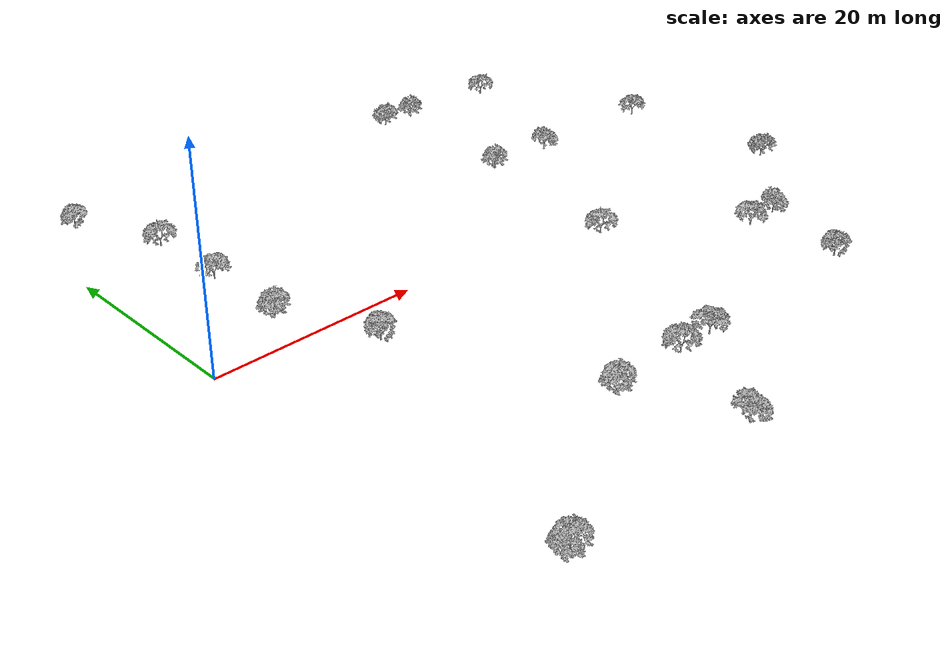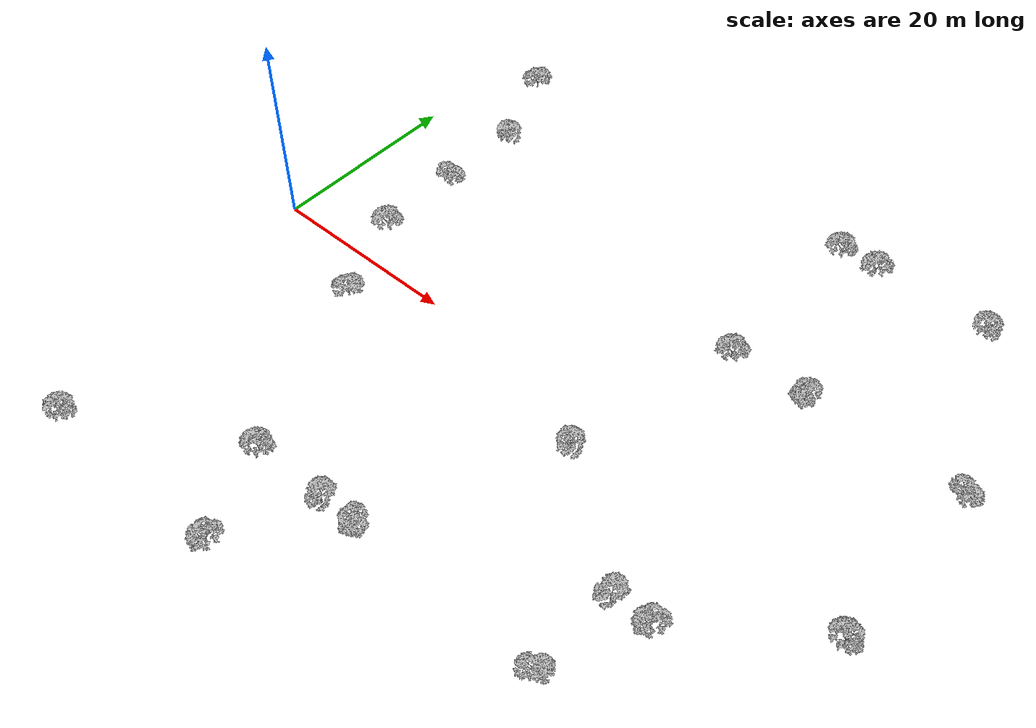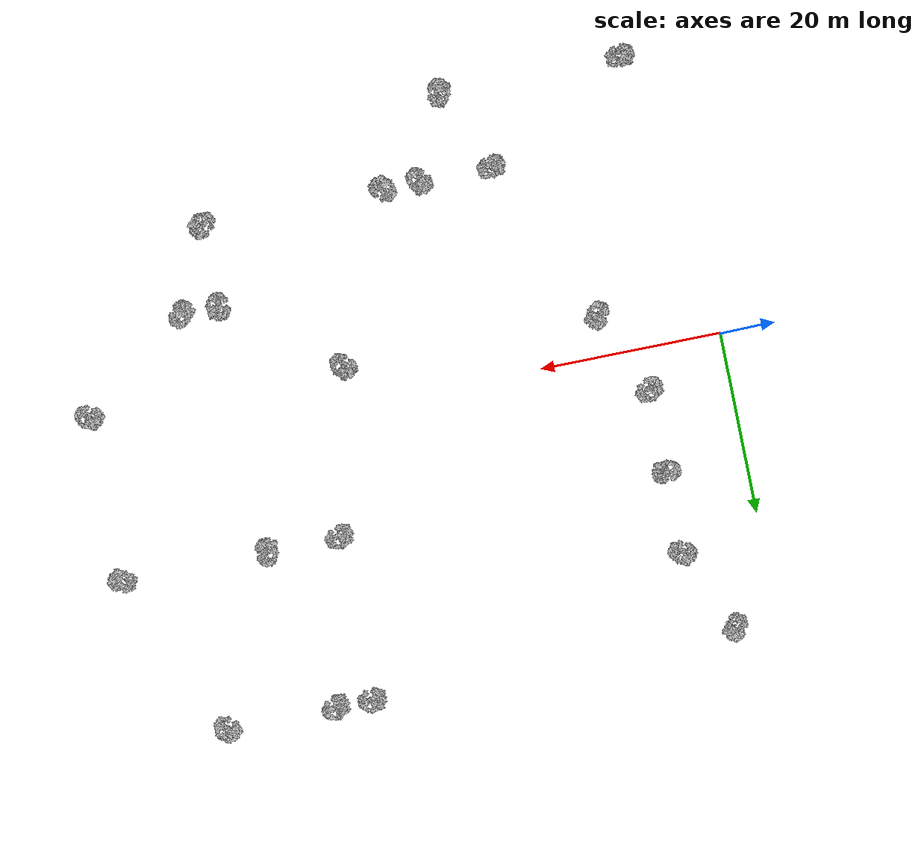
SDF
<sdf version="1.9">
 <world name="orchard_nbv">
  <physics name="fast" type="ode">
   <max_step_size>0.05</max_step_size>
   <real_time_factor>1.0</real_time_factor>
   <real_time_update_rate>20</real_time_update_rate>
  </physics>
  <plugin filename="ignition-gazebo-physics-system" name="ignition::gazebo::systems::Physics"/>
  <plugin filename="ignition-gazebo-user-commands-system" name="ignition::gazebo::systems::UserCommands"/>
  <plugin filename="ignition-gazebo-scene-broadcaster-system" name="ignition::gazebo::systems::SceneBroadcaster"/>
  <plugin filename="ignition-gazebo-sensors-system" name="ignition::gazebo::systems::Sensors">
   <render_engine>ogre2</render_engine>
  </plugin>
  <plugin filename="ignition-gazebo-imu-system" name="ignition::gazebo::systems::Imu"/>
  <plugin filename="ignition-gazebo-navsat-system" name="ignition::gazebo::systems::NavSat"/>
  <spherical_coordinates>
   <surface_model>EARTH_WGS84</surface_model>
   <latitude_deg>37.3611</latitude_deg>
   <longitude_deg>-120.4322</longitude_deg>
   <elevation>0.0</elevation>
   <heading_deg>0</heading_deg>
  </spherical_coordinates>
  <gravity>0 0 -9.8</gravity>
  <light type="directional" name="sun">
   <pose>0 0 20 0 0 0</pose>
   <diffuse>0.95 0.95 0.9 1</diffuse>
   <specular>0.3 0.3 0.3 1</specular>
   <direction>-0.3 0.1 -0.9</direction>
  </light>
  <light type="directional" name="fill">
   <cast_shadows>false</cast_shadows>
   <pose>0 0 10 0 0 0</pose>
   <diffuse>0.4 0.45 0.5 1</diffuse>
   <direction>0.5 -0.2 -0.5</direction>
  </light>
  <scene><ambient>0.4 0.4 0.4 1</ambient><background>0.7 0.75 0.85 1</background><shadows>true</shadows></scene>
  <model name="tree_01">
   <static>true</static>
   <pose>5.0 -31.5 0.0 0 0 -2.9844</pose>
   <link name="link">
    <collision name="trunk_collision">
     <pose>0 0 1.25 0 0 0</pose>
     <geometry><cylinder><radius>1.2</radius><length>2.5</length></cylinder></geometry>
    </collision>
    <visual name="visual">
     <pose>0 0 0 1.5708 0 0</pose>
     <geometry>
      <mesh><uri>package://amiga_ros2_gazebo/meshes/trees_orchard/Citrus_orange_25m_no_mix.obj</uri></mesh>
     </geometry>
    </visual>
   </link>
  </model>
  <model name="tree_06">
   <static>true</static>
   <pose>25.0 -31.5 0.0 0 0 -1.7678</pose>
   <link name="link">
    <collision name="trunk_collision">
     <pose>0 0 1.25 0 0 0</pose>
     <geometry><cylinder><radius>1.2</radius><length>2.5</length></cylinder></geometry>
    </collision>
    <visual name="visual">
     <pose>0 0 0 1.5708 0 0</pose>
     <geometry>
      <mesh><uri>package://amiga_ros2_gazebo/meshes/trees_orchard/Citrus_orange_25m_no_mix.obj</uri></mesh>
     </geometry>
    </visual>
   </link>
  </model>
  <model name="tree_23">
   <static>true</static>
   <pose>21.0 -22.5 0.0 0 0 -2.8537</pose>
   <link name="link">
    <collision name="trunk_collision">
     <pose>0 0 1.25 0 0 0</pose>
     <geometry><cylinder><radius>1.2</radius><length>2.5</length></cylinder></geometry>
    </collision>
    <visual name="visual">
     <pose>0 0 0 1.5708 0 0</pose>
     <geometry>
      <mesh><uri>package://amiga_ros2_gazebo/meshes/trees_orchard/Citrus_orange_25m_no_mix.obj</uri></mesh>
     </geometry>
    </visual>
   </link>
  </model>
  <model name="tree_25">
   <static>true</static>
   <pose>29.0 -22.5 0.0 0 0 2.2325</pose>
   <link name="link">
    <collision name="trunk_collision">
     <pose>0 0 1.25 0 0 0</pose>
     <geometry><cylinder><radius>1.2</radius><length>2.5</length></cylinder></geometry>
    </collision>
    <visual name="visual">
     <pose>0 0 0 1.5708 0 0</pose>
     <geometry>
      <mesh><uri>package://amiga_ros2_gazebo/meshes/trees_orchard/Citrus_orange_25m_no_mix.obj</uri></mesh>
     </geometry>
    </visual>
   </link>
  </model>
  <model name="tree_26">
   <static>true</static>
   <pose>33.0 -22.5 0.0 0 0 -0.7532</pose>
   <link name="link">
    <collision name="trunk_collision">
     <pose>0 0 1.25 0 0 0</pose>
     <geometry><cylinder><radius>1.2</radius><length>2.5</length></cylinder></geometry>
    </collision>
    <visual name="visual">
     <pose>0 0 0 1.5708 0 0</pose>
     <geometry>
      <mesh><uri>package://amiga_ros2_gazebo/meshes/trees_orchard/Citrus_orange_25m_no_mix.obj</uri></mesh>
     </geometry>
    </visual>
   </link>
  </model>
  <model name="tree_31">
   <static>true</static>
   <pose>53.0 -22.5 0.0 0 0 0.6857</pose>
   <link name="link">
    <collision name="trunk_collision">
     <pose>0 0 1.25 0 0 0</pose>
     <geometry><cylinder><radius>1.2</radius><length>2.5</length></cylinder></geometry>
    </collision>
    <visual name="visual">
     <pose>0 0 0 1.5708 0 0</pose>
     <geometry>
      <mesh><uri>package://amiga_ros2_gazebo/meshes/trees_orchard/Citrus_orange_25m_no_mix.obj</uri></mesh>
     </geometry>
    </visual>
   </link>
  </model>
  <model name="tree_49">
   <static>true</static>
   <pose>53.0 -13.5 0.0 0 0 1.6071</pose>
   <link name="link">
    <collision name="trunk_collision">
     <pose>0 0 1.25 0 0 0</pose>
     <geometry><cylinder><radius>1.2</radius><length>2.5</length></cylinder></geometry>
    </collision>
    <visual name="visual">
     <pose>0 0 0 1.5708 0 0</pose>
     <geometry>
      <mesh><uri>package://amiga_ros2_gazebo/meshes/trees_orchard/Citrus_orange_25m_no_mix.obj</uri></mesh>
     </geometry>
    </visual>
   </link>
  </model>
  <model name="tree_50">
   <static>true</static>
   <pose>57.0 -13.5 0.0 0 0 -2.1813</pose>
   <link name="link">
    <collision name="trunk_collision">
     <pose>0 0 1.25 0 0 0</pose>
     <geometry><cylinder><radius>1.2</radius><length>2.5</length></cylinder></geometry>
    </collision>
    <visual name="visual">
     <pose>0 0 0 1.5708 0 0</pose>
     <geometry>
      <mesh><uri>package://amiga_ros2_gazebo/meshes/trees_orchard/Citrus_orange_25m_no_mix.obj</uri></mesh>
     </geometry>
    </visual>
   </link>
  </model>
  <model name="tree_57">
   <static>true</static>
   <pose>13.0 -4.5 0.0 0 0 1.1417</pose>
   <link name="link">
    <collision name="trunk_collision">
     <pose>0 0 1.25 0 0 0</pose>
     <geometry><cylinder><radius>1.2</radius><length>2.5</length></cylinder></geometry>
    </collision>
    <visual name="visual">
     <pose>0 0 0 1.5708 0 0</pose>
     <geometry>
      <mesh><uri>package://amiga_ros2_gazebo/meshes/trees_orchard/Citrus_orange_25m_no_mix.obj</uri></mesh>
     </geometry>
    </visual>
   </link>
  </model>
  <model name="tree_64">
   <static>true</static>
   <pose>41.0 -4.5 0.0 0 0 2.3280</pose>
   <link name="link">
    <collision name="trunk_collision">
     <pose>0 0 1.25 0 0 0</pose>
     <geometry><cylinder><radius>1.2</radius><length>2.5</length></cylinder></geometry>
    </collision>
    <visual name="visual">
     <pose>0 0 0 1.5708 0 0</pose>
     <geometry>
      <mesh><uri>package://amiga_ros2_gazebo/meshes/trees_orchard/Citrus_orange_25m_no_mix.obj</uri></mesh>
     </geometry>
    </visual>
   </link>
  </model>
  <model name="tree_71">
   <static>true</static>
   <pose>69.0 -4.5 0.0 0 0 2.6961</pose>
   <link name="link">
    <collision name="trunk_collision">
     <pose>0 0 1.25 0 0 0</pose>
     <geometry><cylinder><radius>1.2</radius><length>2.5</length></cylinder></geometry>
    </collision>
    <visual name="visual">
     <pose>0 0 0 1.5708 0 0</pose>
     <geometry>
      <mesh><uri>package://amiga_ros2_gazebo/meshes/trees_orchard/Citrus_orange_25m_no_mix.obj</uri></mesh>
     </geometry>
    </visual>
   </link>
  </model>
  <model name="tree_74">
   <static>true</static>
   <pose>9.0 4.5 0.0 0 0 -2.6034</pose>
   <link name="link">
    <collision name="trunk_collision">
     <pose>0 0 1.25 0 0 0</pose>
     <geometry><cylinder><radius>1.2</radius><length>2.5</length></cylinder></geometry>
    </collision>
    <visual name="visual">
     <pose>0 0 0 1.5708 0 0</pose>
     <geometry>
      <mesh><uri>package://amiga_ros2_gazebo/meshes/trees_orchard/Citrus_orange_25m_no_mix.obj</uri></mesh>
     </geometry>
    </visual>
   </link>
  </model>
  <model name="tree_92">
   <static>true</static>
   <pose>9.0 13.5 0.0 0 0 0.0889</pose>
   <link name="link">
    <collision name="trunk_collision">
     <pose>0 0 1.25 0 0 0</pose>
     <geometry><cylinder><radius>1.2</radius><length>2.5</length></cylinder></geometry>
    </collision>
    <visual name="visual">
     <pose>0 0 0 1.5708 0 0</pose>
     <geometry>
      <mesh><uri>package://amiga_ros2_gazebo/meshes/trees_orchard/Citrus_orange_25m_no_mix.obj</uri></mesh>
     </geometry>
    </visual>
   </link>
  </model>
  <model name="tree_101">
   <static>true</static>
   <pose>45.0 13.5 0.0 0 0 -2.7608</pose>
   <link name="link">
    <collision name="trunk_collision">
     <pose>0 0 1.25 0 0 0</pose>
     <geometry><cylinder><radius>1.2</radius><length>2.5</length></cylinder></geometry>
    </collision>
    <visual name="visual">
     <pose>0 0 0 1.5708 0 0</pose>
     <geometry>
      <mesh><uri>package://amiga_ros2_gazebo/meshes/trees_orchard/Citrus_orange_25m_no_mix.obj</uri></mesh>
     </geometry>
    </visual>
   </link>
  </model>
  <model name="tree_103">
   <static>true</static>
   <pose>53.0 13.5 0.0 0 0 -1.5792</pose>
   <link name="link">
    <collision name="trunk_collision">
     <pose>0 0 1.25 0 0 0</pose>
     <geometry><cylinder><radius>1.2</radius><length>2.5</length></cylinder></geometry>
    </collision>
    <visual name="visual">
     <pose>0 0 0 1.5708 0 0</pose>
     <geometry>
      <mesh><uri>package://amiga_ros2_gazebo/meshes/trees_orchard/Citrus_orange_25m_no_mix.obj</uri></mesh>
     </geometry>
    </visual>
   </link>
  </model>
  <model name="tree_107">
   <static>true</static>
   <pose>69.0 13.5 0.0 0 0 -0.3573</pose>
   <link name="link">
    <collision name="trunk_collision">
     <pose>0 0 1.25 0 0 0</pose>
     <geometry><cylinder><radius>1.2</radius><length>2.5</length></cylinder></geometry>
    </collision>
    <visual name="visual">
     <pose>0 0 0 1.5708 0 0</pose>
     <geometry>
      <mesh><uri>package://amiga_ros2_gazebo/meshes/trees_orchard/Citrus_orange_25m_no_mix.obj</uri></mesh>
     </geometry>
    </visual>
   </link>
  </model>
  <model name="tree_110">
   <static>true</static>
   <pose>9.0 22.5 0.0 0 0 2.6789</pose>
   <link name="link">
    <collision name="trunk_collision">
     <pose>0 0 1.25 0 0 0</pose>
     <geometry><cylinder><radius>1.2</radius><length>2.5</length></cylinder></geometry>
    </collision>
    <visual name="visual">
     <pose>0 0 0 1.5708 0 0</pose>
     <geometry>
      <mesh><uri>package://amiga_ros2_gazebo/meshes/trees_orchard/Citrus_orange_25m_no_mix.obj</uri></mesh>
     </geometry>
    </visual>
   </link>
  </model>
  <model name="tree_127">
   <static>true</static>
   <pose>5.0 31.5 0.0 0 0 1.1009</pose>
   <link name="link">
    <collision name="trunk_collision">
     <pose>0 0 1.25 0 0 0</pose>
     <geometry><cylinder><radius>1.2</radius><length>2.5</length></cylinder></geometry>
    </collision>
    <visual name="visual">
     <pose>0 0 0 1.5708 0 0</pose>
     <geometry>
      <mesh><uri>package://amiga_ros2_gazebo/meshes/trees_orchard/Citrus_orange_25m_no_mix.obj</uri></mesh>
     </geometry>
    </visual>
   </link>
  </model>
  <model name="tree_137">
   <static>true</static>
   <pose>45.0 31.5 0.0 0 0 -3.0831</pose>
   <link name="link">
    <collision name="trunk_collision">
     <pose>0 0 1.25 0 0 0</pose>
     <geometry><cylinder><radius>1.2</radius><length>2.5</length></cylinder></geometry>
    </collision>
    <visual name="visual">
     <pose>0 0 0 1.5708 0 0</pose>
     <geometry>
      <mesh><uri>package://amiga_ros2_gazebo/meshes/trees_orchard/Citrus_orange_25m_no_mix.obj</uri></mesh>
     </geometry>
    </visual>
   </link>
  </model>
  <model name="tree_138">
   <static>true</static>
   <pose>49.0 31.5 0.0 0 0 -2.6813</pose>
   <link name="link">
    <collision name="trunk_collision">
     <pose>0 0 1.25 0 0 0</pose>
     <geometry><cylinder><radius>1.2</radius><length>2.5</length></cylinder></geometry>
    </collision>
    <visual name="visual">
     <pose>0 0 0 1.5708 0 0</pose>
     <geometry>
      <mesh><uri>package://amiga_ros2_gazebo/meshes/trees_orchard/Citrus_orange_25m_no_mix.obj</uri></mesh>
     </geometry>
    </visual>
   </link>
  </model>
  <model name="tree_141">
   <static>true</static>
   <pose>61.0 31.5 0.0 0 0 2.3830</pose>
   <link name="link">
    <collision name="trunk_collision">
     <pose>0 0 1.25 0 0 0</pose>
     <geometry><cylinder><radius>1.2</radius><length>2.5</length></cylinder></geometry>
    </collision>
    <visual name="visual">
     <pose>0 0 0 1.5708 0 0</pose>
     <geometry>
      <mesh><uri>package://amiga_ros2_gazebo/meshes/trees_orchard/Citrus_orange_25m_no_mix.obj</uri></mesh>
     </geometry>
    </visual>
   </link>
  </model>
 </world>
</sdf>
